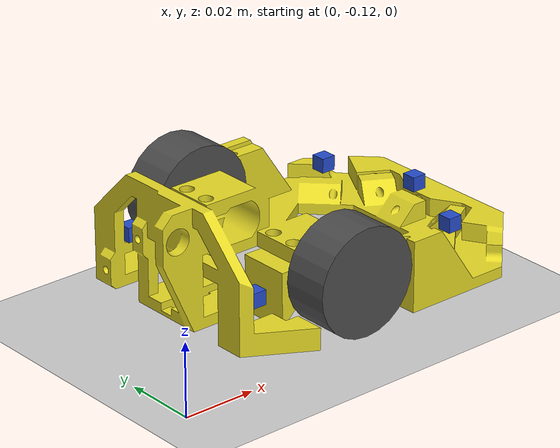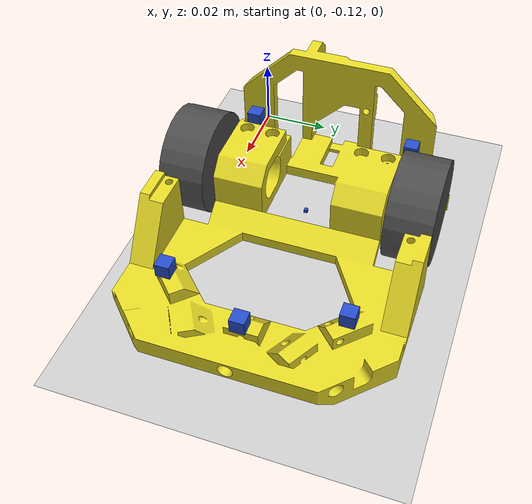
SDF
<?xml version="1.0"?>
<sdf version="1.6">
  <world name="default">
    <include>
      <uri>model://ground_plane</uri>
    </include>

    <include>
      <uri>model://sun</uri>
    </include>

    <include>
      <pose>0.05 -0.09 0.001 0 0 0</pose>
      <uri>model://mouse</uri>
    </include>

    <gui>
      <plugin name="regenerate_widget" filename="libregenerate_widget.so"/>
      <plugin name="state_viz_plugin" filename="libstate_viz.so"/>
      <camera name='user_camera'>
        <pose frame=''>0 0 1 0.0 1.5707 1.5707</pose>
        <view_controller>ortho</view_controller>
        <projection_type>orthographic</projection_type>
      </camera>
    </gui>

    <plugin name="maze" filename="libmaze_plugin.so"/>
    <plugin name="fast_sim_time" filename="libfast_sim_time_pub_plugin.so"/>

		<physics type="ode">
      <real_time_update_rate>1000.0</real_time_update_rate>
      <ode>
				<constraints>
          <cfm>0.2</cfm> <!-- increasing this (0 - 1) can increase numerical stability -->
        </constraints>
      </ode>
    </physics>
  </world>
</sdf>

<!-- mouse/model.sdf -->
<sdf version='1.6'>
    <model name='mouse'>
        <link name="center">
            <pose>0 0 0.01 0 0 0</pose>
            <inertial>
                <pose>0 0 0 0 0 0</pose>
                <mass>1e-20</mass>
                <inertia>
                    <ixx>1e-20</ixx>
                    <ixy>0</ixy>
                    <ixz>0</ixz>
                    <izz>1e-20</izz>
                    <iyz>0</iyz>
                    <iyy>1e-20</iyy>
                </inertia>
            </inertial>
            <visual name="visual">
                <pose>0 0 0 0 0 0</pose>
                <geometry>
                    <box>
                        <size>0.001 0.001 0.001</size>
                    </box>
                </geometry>
                <material>
                    <script>
                        <name>Gazebo/Blue</name>
                        <uri>file://media/materials/scripts/gazebo.material</uri>
                    </script>
                </material>
            </visual>
        </link>
        <link name='base'>
            <pose>0 0 0.005 0 0 0</pose>
            <inertial>
                <pose frame=''>0.0095 0.0 0.019 0 0 0</pose>
                <mass>0.5</mass>
                <inertia>
                    <ixx>2.8333e-4</ixx>
                    <ixy>0</ixy>
                    <ixz>0</ixz>
                    <izz>6.6570e-4</izz>
                    <iyz>0</iyz>
                    <iyy>4.6770e-4</iyy>
                </inertia>
            </inertial>
            <visual name='whole_robot_visual'>
                <pose>0 0.032 0.015 1.5707 0 0</pose>
                <geometry>
                    <mesh>
                        <uri>model://mouse/body.stl</uri>
                        <scale>0.001 0.001 0.001</scale>
                    </mesh>
                </geometry>
                <material>
                    <script>
                        <name>Gazebo/Yellow</name>
                        <uri>file://media/materials/scripts/gazebo.material</uri>
                    </script>
                </material>
            </visual>
            <collision name='main_body_collision'>
                <max_contacts>6</max_contacts>
                <pose>0 0 0.012 0 0 0</pose>
                <geometry>
                    <polyline>
                      <height>0.032</height>
                      <point>-0.0410 0.019</point>
                      <point>-0.0220 0.038</point>
                      <point>0.0410 0.038</point>
                      <point>0.0600 0.019</point>
                      <point>0.0600 -0.019</point>
                      <point>0.0410 -0.038</point>
                      <point>-0.0220 -0.038</point>
                      <point>-0.0410 -0.019</point>
                    </polyline>
                </geometry>
                <surface>
                    <friction>
                        <ode>
                            <mu>0.01</mu>
                            <mu2>0.01</mu2>
                        </ode>
                    </friction>
                    <contact>
                        <ode>
                            <soft_cfm>1.7e-10</soft_cfm>
                            <soft_erp>0.17</soft_erp>
                            <kp>1e9</kp>
                            <kd>5e10</kd>
                            <max_vel>0.01</max_vel>
                            <min_depth>0</min_depth>
                        </ode>
                    </contact>
                </surface>
            </collision>
            <collision name='bumper'>
                <max_contacts>6</max_contacts>
                <pose>0.052 0 0.002 0 0 0</pose>
                <geometry>
                    <polyline>
                        <height>0.002</height>
                        <point>.009 -0.023</point>
                        <point>.009 0.023</point>
                        <point>-.009 0.038</point>
                        <point>-.009 -0.038</point>
                    </polyline>
                </geometry>
                <surface>
                    <friction>
                        <ode>
                            <mu>0.001</mu>
                            <mu2>0.001</mu2>
                        </ode>
                    </friction>
                </surface>
            </collision>
            <visual name="front_left_analog_visual">
                <pose>0.04 0.024 0.015 0 0 0</pose>
                <geometry>
                    <box>
                        <size>0.004 0.004 0.004</size>
                    </box>
                </geometry>
                <material>
                    <script>
                        <name>Gazebo/Blue</name>
                        <uri>file://media/materials/scripts/gazebo.material</uri>
                    </script>
                </material>
            </visual>
            <visual name="front_right_analog_visual">
                <pose>0.04 -0.024 0.015 0 0 0</pose>
                <geometry>
                    <box>
                        <size>0.004 0.004 0.004</size>
                    </box>
                </geometry>
                <material>
                    <script>
                        <name>Gazebo/Blue</name>
                        <uri>file://media/materials/scripts/gazebo.material</uri>
                    </script>
                </material>
            </visual>
            <visual name="back_left_analog_visual">
                <pose>-0.024 0.024 0.015 0 0 0</pose>
                <geometry>
                    <box>
                        <size>0.004 0.004 0.004</size>
                    </box>
                </geometry>
                <material>
                    <script>
                        <name>Gazebo/Blue</name>
                        <uri>file://media/materials/scripts/gazebo.material</uri>
                    </script>
                </material>
            </visual>
            <visual name="back_right_analog_visual">
                <pose>-0.024 -0.024 0.015 0 0 0</pose>
                <geometry>
                    <box>
                        <size>0.004 0.004 0.004</size>
                    </box>
                </geometry>
                <material>
                    <script>
                        <name>Gazebo/Blue</name>
                        <uri>file://media/materials/scripts/gazebo.material</uri>
                    </script>
                </material>
            </visual>
            <visual name="front_analog_visual">
                <pose>0.05 0 0.015 0 0 0</pose>
                <geometry>
                    <box>
                        <size>0.004 0.004 0.004</size>
                    </box>
                </geometry>
                <material>
                    <script>
                        <name>Gazebo/Blue</name>
                        <uri>file://media/materials/scripts/gazebo.material</uri>
                    </script>
                </material>
            </visual>
            <sensor name="front_left_analog" type="ray">
                <pose>0.040 0.024 0.015 0 0 0</pose>
                <ray>
                    <scan>
                        <horizontal>
                            <samples>10</samples>
                            <resolution>0.10</resolution>
                            <min_angle>1.3089</min_angle>
                            <max_angle>1.3962</max_angle>
                        </horizontal>
                    </scan>
                    <range>
                        <min>0.02</min>
                        <max>0.18</max>
                        <resolution>0.015</resolution>
                    </range>
                </ray>
                <plugin name="front_left_analog_ray" filename="libRayPlugin.so"/>
                <always_on>1</always_on>
                <update_rate>20</update_rate>
                <visualize>true</visualize>
            </sensor>
            <sensor name="front_right_analog" type="ray">
                <pose>0.040 -0.024 0.015 0 0 0</pose>
                <ray>
                    <scan>
                        <horizontal>
                            <samples>10</samples>
                            <resolution>.10</resolution>
                            <min_angle>-1.3089</min_angle>
                            <max_angle>-1.3962</max_angle>
                        </horizontal>
                    </scan>
                    <range>
                        <min>0.02</min>
                        <max>0.18</max>
                        <resolution>0.015</resolution>
                    </range>
                </ray>
                <plugin name="front_right_analog_ray" filename="libRayPlugin.so"/>
                <always_on>1</always_on>
                <update_rate>20</update_rate>
                <visualize>true</visualize>
            </sensor>
            <sensor name="back_left_analog" type="ray">
                <pose>-0.024 0.024 0.015 0 0 0</pose>
                <ray>
                    <scan>
                        <horizontal>
                            <samples>10</samples>
                            <resolution>0.10</resolution>
                            <min_angle>1.3089</min_angle>
                            <max_angle>1.3962</max_angle>
                        </horizontal>
                    </scan>
                    <range>
                        <min>0.02</min>
                        <max>0.18</max>
                        <resolution>0.015</resolution>
                    </range>
                </ray>
                <plugin name="back_left_analog_ray" filename="libRayPlugin.so"/>
                <always_on>1</always_on>
                <update_rate>20</update_rate>
                <visualize>true</visualize>
            </sensor>
            <sensor name="back_right_analog" type="ray">
                <pose>-0.024 -0.024 0.015 0 0 0</pose>
                <ray>
                    <scan>
                        <horizontal>
                            <samples>10</samples>
                            <resolution>0.10</resolution>
                            <min_angle>-1.3089</min_angle>
                            <max_angle>-1.3962</max_angle>
                        </horizontal>
                    </scan>
                    <range>
                        <min>0.02</min>
                        <max>0.18</max>
                        <resolution>0.015</resolution>
                    </range>
                </ray>
                <plugin name="back_right_analog_ray" filename="libRayPlugin.so"/>
                <always_on>1</always_on>
                <update_rate>20</update_rate>
                <visualize>true</visualize>
            </sensor>
            <sensor name="front_analog" type="ray">
                <pose>0.05 0 0.015 0 0 0</pose>
                <ray>
                    <scan>
                        <horizontal>
                            <samples>10</samples>
                            <resolution>0.10</resolution>
                            <min_angle>-0.04</min_angle>
                            <max_angle>0.04</max_angle>
                        </horizontal>
                    </scan>
                    <range>
                        <min>0.02</min>
                        <max>0.18</max>
                        <resolution>0.015</resolution>
                    </range>
                </ray>
                <plugin name="front_analog_ray" filename="libRayPlugin.so"/>
                <always_on>1</always_on>
                <update_rate>20</update_rate>
                <visualize>true</visualize>
            </sensor>
        </link>
        <link name='right_wheel'>
            <pose>0.0 -0.0313 0.021 0 1.57079 1.57079</pose>
            <inertial>
                <mass>0.01</mass>
                <inertia>
                    <ixx>6.96908333e-07</ixx>
                    <ixy>0</ixy>
                    <ixz>0</ixz>
                    <iyy>6.96908333e-07</iyy>
                    <iyz>0</iyz>
                    <izz>1.125e-06</izz>
                </inertia>
                <pose>0 0 0 0 0 0</pose>
            </inertial>
            <visual name='right_wheel_visual'>
                <pose>0 0 0 0 0 0</pose>
                <geometry>
                    <cylinder>
                        <radius>0.0145</radius>
                        <length>0.0127</length>
                    </cylinder>
                </geometry>
                <material>
                    <script>
                        <name>Gazebo/DarkGray</name>
                        <uri>file://media/materials/scripts/gazebo.material</uri>
                    </script>
                </material>
            </visual>
            <collision name='right_wheel_collision'>
                <pose>0 0 0 0 0 0</pose>
                <max_contacts>2</max_contacts>
                <geometry>
                    <cylinder>
                        <radius>0.0145</radius>
                        <length>0.0127</length>
                    </cylinder>
                </geometry>
                <surface>
                    <friction>
                        <ode>
                            <mu>0.32</mu>
                            <mu2>0.48</mu2>
                            <fdir1>0 0 1</fdir1>
                            <slip1>0</slip1>
                            <slip2>0</slip2> <!-- increases "drifting" -->
                        </ode>
                    </friction>
                    <contact>
                        <ode>
                            <soft_cfm>1.7e-10</soft_cfm>
                            <soft_erp>0.17</soft_erp>
                            <kp>1e9</kp>
                            <kd>5e10</kd>
                            <max_vel>0.01</max_vel>
                            <min_depth>0</min_depth>
                        </ode>
                    </contact>
                </surface>
            </collision>
        </link>
        <link name='left_wheel'>
            <pose>0.0 0.0313 0.021 0 1.57079 1.57079</pose>
            <inertial>
                <mass>0.01</mass>
                <inertia>
                    <ixx>6.96908333e-07</ixx>
                    <ixy>0</ixy>
                    <ixz>0</ixz>
                    <iyy>6.96908333e-07</iyy>
                    <iyz>0</iyz>
                    <izz>1.125e-06</izz>
                </inertia>
            </inertial>
            <visual name='left_wheel_visual'>
                <pose>0 0 0 0 0 0</pose>
                <geometry>
                    <cylinder>
                        <radius>0.0145</radius>
                        <length>0.0127</length>
                    </cylinder>
                </geometry>
                <material>
                    <script>
                        <name>Gazebo/DarkGray</name>
                        <uri>file://media/materials/scripts/gazebo.material</uri>
                    </script>
                </material>
            </visual>
            <collision name='left_wheel_collision'>
                <max_contacts>2</max_contacts>
                <pose>0 0 0 0 0 0</pose>
                <geometry>
                    <cylinder>
                        <radius>0.0145</radius>
                        <length>0.0127</length>
                    </cylinder>
                </geometry>
                <surface>
                    <friction>
                        <ode>
                            <mu>0.32</mu>
                            <mu2>0.48</mu2>
                            <fdir1>0 0 1</fdir1>
                            <slip1>0</slip1>
                            <slip2>0</slip2>
                        </ode>
                    </friction>
                    <contact>
                        <ode>
                            <soft_cfm>1.7e-10</soft_cfm>
                            <soft_erp>0.17</soft_erp>
                            <kp>1e9</kp>
                            <kd>5e10</kd>
                            <max_vel>0.01</max_vel>
                            <min_depth>0</min_depth>
                        </ode>
                    </contact>
                </surface>
            </collision>
        </link>
        <joint name='left_wheel_joint' type='revolute'>
            <parent>base</parent>
            <child>left_wheel</child>
            <pose>0 0 0 0 0 0</pose>
            <axis>
                <xyz>0 0 1</xyz>
                <limit>
                    <effort>0.016</effort> <!-- 16 kg-cm -->
                    <velocity>41.88</velocity> <!-- ~400 rpm -->
                </limit>
                <dynamics>
                    <damping>0.00018</damping>
                </dynamics>
            </axis>
            <physics>
                <ode>
                    <implicit_spring_damper>true</implicit_spring_damper>
                    <limit>
                        <cfm>0.0</cfm>
                        <erp>0.0</erp>
                    </limit>
                    <suspension>
                        <cfm>0.0</cfm>
                        <erp>0.0</erp>
                    </suspension>
                </ode>
            </physics>
        </joint>
        <joint name='right_wheel_joint' type='revolute'>
            <parent>base</parent>
            <child>right_wheel</child>
            <pose>0 0 0 0 0 0</pose>
            <axis>
                <xyz>0 0 1</xyz>
                <use_parent_model_frame>0</use_parent_model_frame>
                <limit>
                    <effort>0.016</effort> <!-- 16 kg-cm -->
                    <velocity>41.88</velocity> <!-- ~400 rpm -->
                </limit>
                <dynamics>
                    <damping>0.00018</damping>
                </dynamics>
            </axis>
            <physics>
                <ode>
                    <implicit_spring_damper>true</implicit_spring_damper>
                    <limit>
                        <cfm>0</cfm>
                        <erp>0.0</erp>
                    </limit>
                    <suspension>
                        <cfm>0</cfm>
                        <erp>0.0</erp>
                    </suspension>
                </ode>
            </physics>
        </joint>
        <joint name="center_joint" type="fixed">
           <parent>base</parent>
            <child>center</child>
            <pose>0 0 0 0 0 0</pose>
        </joint>
        <plugin name="mouse_plugin" filename="libmouse_plugin.so">
            <left_wheel_joint>left_wheel_joint</left_wheel_joint>
            <right_wheel_joint>right_wheel_joint</right_wheel_joint>
            <link>center</link>
        </plugin>
        <plugin name="link_plot_3d" filename="liblink_plot_3d_plugin.so">
            <minimum_distance>0.002</minimum_distance>
            <buffer_length>1000</buffer_length>
            <plot>
                <link>base</link>
                <pose>0 0 0.005 0 0 0</pose>
            </plot>
            <frequency>10000</frequency>
        </plugin>
    </model>
</sdf>
